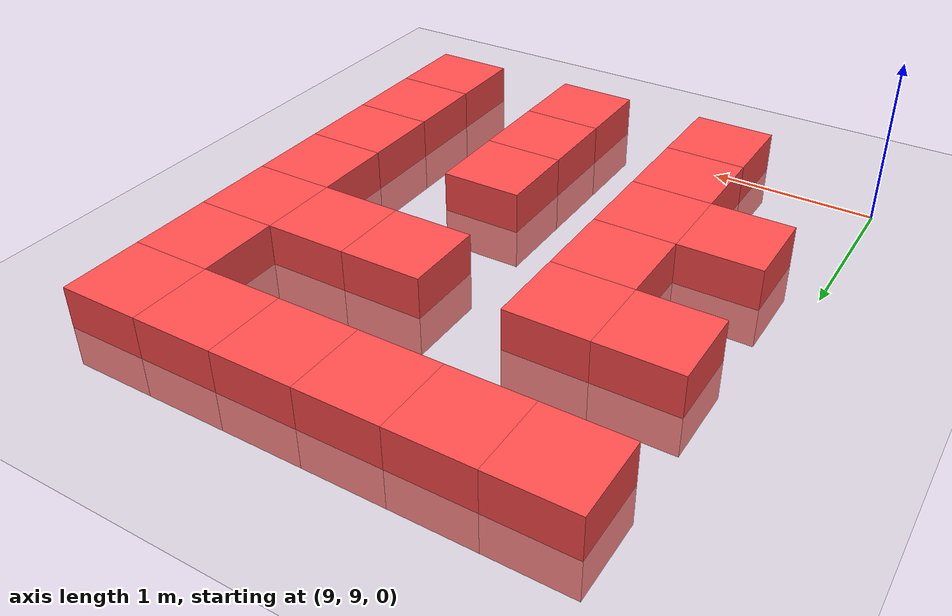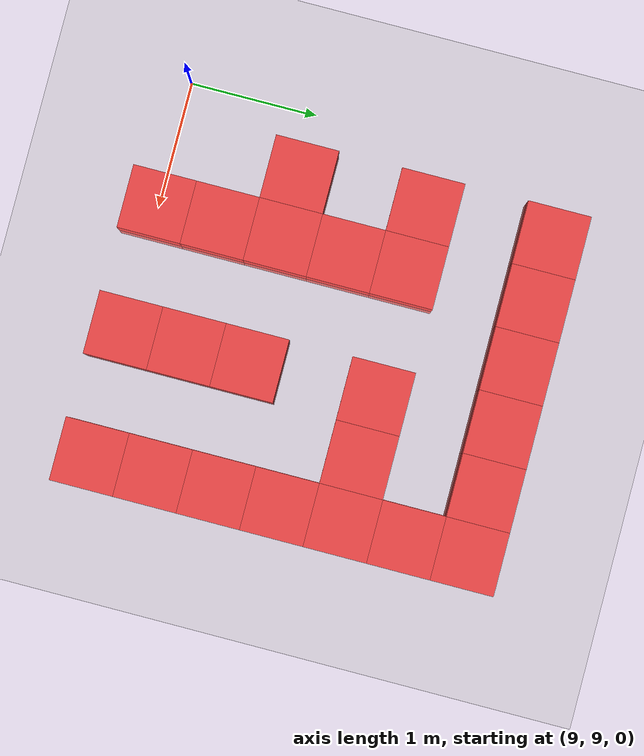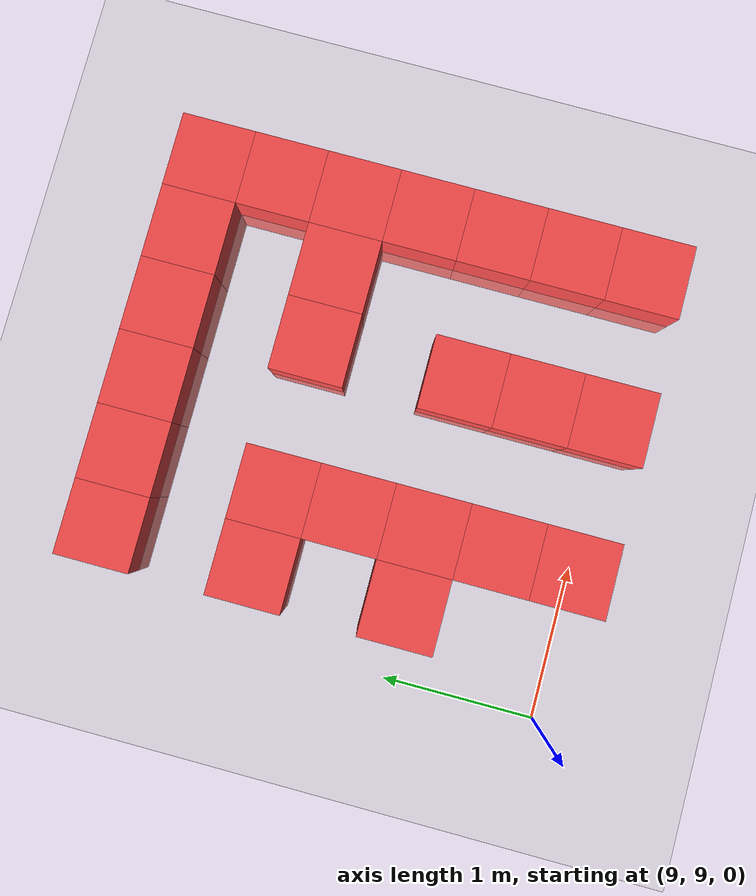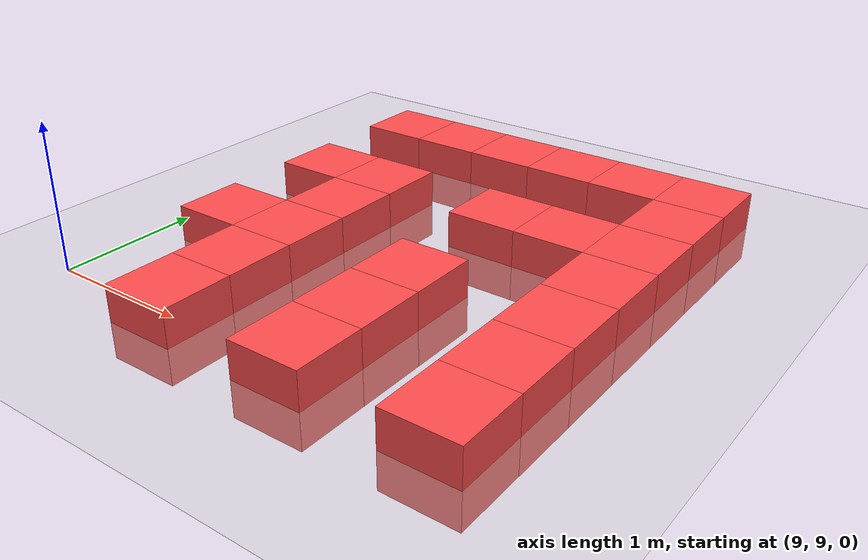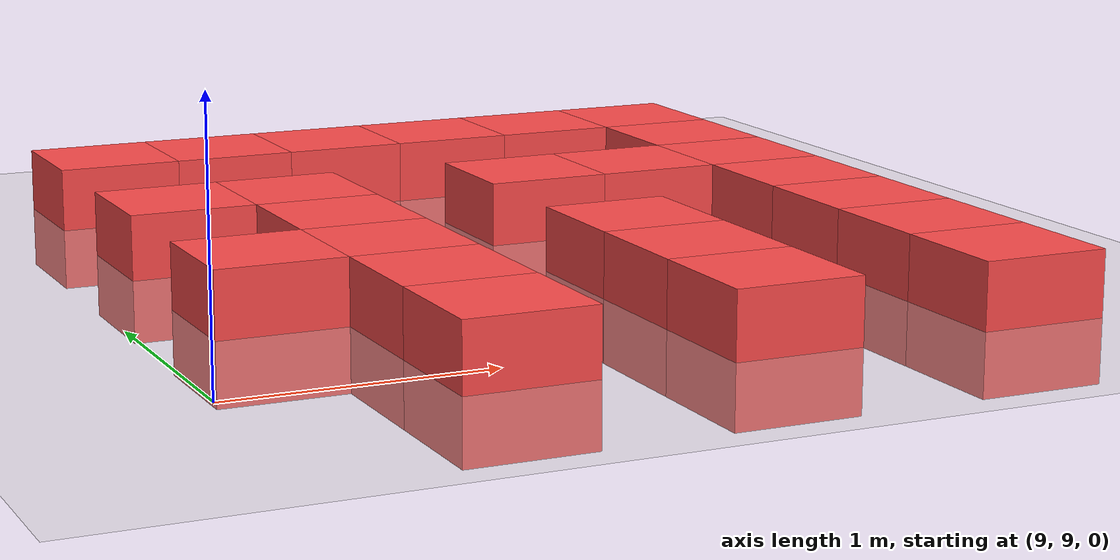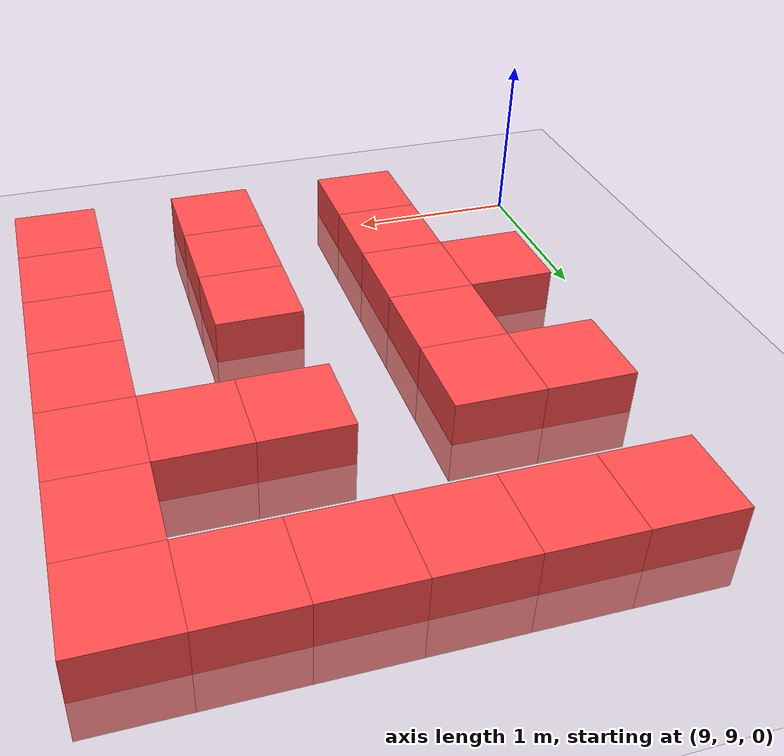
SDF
<sdf version="1.6">
 <world name="default">
  <model name="ground_plane">
   <static>1</static>
   <link name="link">
    <collision name="collision">
     <geometry><plane><normal>0 0 1</normal><size>100 100</size></plane></geometry>
     <surface><friction><ode><mu>100</mu><mu2>50</mu2></ode></friction></surface>
    </collision>
    <visual name="visual">
     <cast_shadows>0</cast_shadows>
     <geometry><plane><normal>0 0 1</normal><size>100 100</size></plane></geometry>
     <material>
      <script><uri>file://media/materials/scripts/gazebo.material</uri><name>Gazebo/Grey</name></script>
     </material>
    </visual>
   </link>
  </model>
  <model name="Box_Red_495">
   <link name="link_0">
    <inertial>
     <mass>1</mass>
     <inertia>
      <ixx>0.166667</ixx>
      <ixy>0</ixy>
      <ixz>0</ixz>
      <iyy>0.166667</iyy>
      <iyz>0</iyz>
      <izz>0.166667</izz>
     </inertia>
    </inertial>
    <visual name="visual">
     <geometry><box><size>0.5 0.5 0.5</size></box></geometry>
     <material>
      <lighting>1</lighting>
      <script><uri>file://media/materials/scripts/gazebo.material</uri><name>Gazebo/Grey</name></script>
      <ambient>1 0.3 0.3 1</ambient>
      <diffuse>0.7 0.7 0.7 1</diffuse>
      <specular>0.01 0.01 0.01 1</specular>
      <emissive>0 0 0 1</emissive>
      <shader type="vertex"><normal_map>__default__</normal_map></shader>
     </material>
    </visual>
    <collision name="collision">
     <geometry><box><size>0.5 0.5 0.5</size></box></geometry>
     <surface>
      <friction>
       <ode><mu>1</mu><mu2>1</mu2><fdir1>0 0 0</fdir1><slip1>0</slip1><slip2>0</slip2></ode>
       <torsional>
        <coefficient>1</coefficient>
        <patch_radius>0</patch_radius>
        <surface_radius>0</surface_radius>
        <use_patch_radius>1</use_patch_radius>
        <ode><slip>0</slip></ode>
       </torsional>
      </friction>
      <bounce><restitution_coefficient>0</restitution_coefficient><threshold>1e+06</threshold></bounce>
      <contact>
       <collide_without_contact>0</collide_without_contact>
       <collide_without_contact_bitmask>1</collide_without_contact_bitmask>
       <collide_bitmask>1</collide_bitmask>
       <ode>
        <soft_cfm>0</soft_cfm>
        <soft_erp>0.2</soft_erp>
        <kp>1e+13</kp>
        <kd>1</kd>
        <max_vel>0.01</max_vel>
        <min_depth>0</min_depth>
       </ode>
       <bullet>
        <split_impulse>1</split_impulse>
        <split_impulse_penetration_threshold>-0.01</split_impulse_penetration_threshold>
        <soft_cfm>0</soft_cfm>
        <soft_erp>0.2</soft_erp>
        <kp>1e+13</kp>
        <kd>1</kd>
       </bullet>
      </contact>
     </surface>
    </collision>
   </link>
   <static>0</static>
   <pose>9.500 10.000 0.000 0 0 0</pose>
  </model>
  <model name="Box_Red_497">
   <link name="link_0">
    <inertial>
     <mass>1</mass>
     <inertia>
      <ixx>0.166667</ixx>
      <ixy>0</ixy>
      <ixz>0</ixz>
      <iyy>0.166667</iyy>
      <iyz>0</iyz>
      <izz>0.166667</izz>
     </inertia>
    </inertial>
    <visual name="visual">
     <geometry><box><size>0.5 0.5 0.5</size></box></geometry>
     <material>
      <lighting>1</lighting>
      <script><uri>file://media/materials/scripts/gazebo.material</uri><name>Gazebo/Grey</name></script>
      <ambient>1 0.3 0.3 1</ambient>
      <diffuse>0.7 0.7 0.7 1</diffuse>
      <specular>0.01 0.01 0.01 1</specular>
      <emissive>0 0 0 1</emissive>
      <shader type="vertex"><normal_map>__default__</normal_map></shader>
     </material>
    </visual>
    <collision name="collision">
     <geometry><box><size>0.5 0.5 0.5</size></box></geometry>
     <surface>
      <friction>
       <ode><mu>1</mu><mu2>1</mu2><fdir1>0 0 0</fdir1><slip1>0</slip1><slip2>0</slip2></ode>
       <torsional>
        <coefficient>1</coefficient>
        <patch_radius>0</patch_radius>
        <surface_radius>0</surface_radius>
        <use_patch_radius>1</use_patch_radius>
        <ode><slip>0</slip></ode>
       </torsional>
      </friction>
      <bounce><restitution_coefficient>0</restitution_coefficient><threshold>1e+06</threshold></bounce>
      <contact>
       <collide_without_contact>0</collide_without_contact>
       <collide_without_contact_bitmask>1</collide_without_contact_bitmask>
       <collide_bitmask>1</collide_bitmask>
       <ode>
        <soft_cfm>0</soft_cfm>
        <soft_erp>0.2</soft_erp>
        <kp>1e+13</kp>
        <kd>1</kd>
        <max_vel>0.01</max_vel>
        <min_depth>0</min_depth>
       </ode>
       <bullet>
        <split_impulse>1</split_impulse>
        <split_impulse_penetration_threshold>-0.01</split_impulse_penetration_threshold>
        <soft_cfm>0</soft_cfm>
        <soft_erp>0.2</soft_erp>
        <kp>1e+13</kp>
        <kd>1</kd>
       </bullet>
      </contact>
     </surface>
    </collision>
   </link>
   <static>0</static>
   <pose>9.500 11.000 0.000 0 0 0</pose>
  </model>
  <model name="Box_Red_499">
   <link name="link_0">
    <inertial>
     <mass>1</mass>
     <inertia>
      <ixx>0.166667</ixx>
      <ixy>0</ixy>
      <ixz>0</ixz>
      <iyy>0.166667</iyy>
      <iyz>0</iyz>
      <izz>0.166667</izz>
     </inertia>
    </inertial>
    <visual name="visual">
     <geometry><box><size>0.5 0.5 0.5</size></box></geometry>
     <material>
      <lighting>1</lighting>
      <script><uri>file://media/materials/scripts/gazebo.material</uri><name>Gazebo/Grey</name></script>
      <ambient>1 0.3 0.3 1</ambient>
      <diffuse>0.7 0.7 0.7 1</diffuse>
      <specular>0.01 0.01 0.01 1</specular>
      <emissive>0 0 0 1</emissive>
      <shader type="vertex"><normal_map>__default__</normal_map></shader>
     </material>
    </visual>
    <collision name="collision">
     <geometry><box><size>0.5 0.5 0.5</size></box></geometry>
     <surface>
      <friction>
       <ode><mu>1</mu><mu2>1</mu2><fdir1>0 0 0</fdir1><slip1>0</slip1><slip2>0</slip2></ode>
       <torsional>
        <coefficient>1</coefficient>
        <patch_radius>0</patch_radius>
        <surface_radius>0</surface_radius>
        <use_patch_radius>1</use_patch_radius>
        <ode><slip>0</slip></ode>
       </torsional>
      </friction>
      <bounce><restitution_coefficient>0</restitution_coefficient><threshold>1e+06</threshold></bounce>
      <contact>
       <collide_without_contact>0</collide_without_contact>
       <collide_without_contact_bitmask>1</collide_without_contact_bitmask>
       <collide_bitmask>1</collide_bitmask>
       <ode>
        <soft_cfm>0</soft_cfm>
        <soft_erp>0.2</soft_erp>
        <kp>1e+13</kp>
        <kd>1</kd>
        <max_vel>0.01</max_vel>
        <min_depth>0</min_depth>
       </ode>
       <bullet>
        <split_impulse>1</split_impulse>
        <split_impulse_penetration_threshold>-0.01</split_impulse_penetration_threshold>
        <soft_cfm>0</soft_cfm>
        <soft_erp>0.2</soft_erp>
        <kp>1e+13</kp>
        <kd>1</kd>
       </bullet>
      </contact>
     </surface>
    </collision>
   </link>
   <static>0</static>
   <pose>9.500 12.000 0.000 0 0 0</pose>
  </model>
  <model name="Box_Red_518">
   <link name="link_0">
    <inertial>
     <mass>1</mass>
     <inertia>
      <ixx>0.166667</ixx>
      <ixy>0</ixy>
      <ixz>0</ixz>
      <iyy>0.166667</iyy>
      <iyz>0</iyz>
      <izz>0.166667</izz>
     </inertia>
    </inertial>
    <visual name="visual">
     <geometry><box><size>0.5 0.5 0.5</size></box></geometry>
     <material>
      <lighting>1</lighting>
      <script><uri>file://media/materials/scripts/gazebo.material</uri><name>Gazebo/Grey</name></script>
      <ambient>1 0.3 0.3 1</ambient>
      <diffuse>0.7 0.7 0.7 1</diffuse>
      <specular>0.01 0.01 0.01 1</specular>
      <emissive>0 0 0 1</emissive>
      <shader type="vertex"><normal_map>__default__</normal_map></shader>
     </material>
    </visual>
    <collision name="collision">
     <geometry><box><size>0.5 0.5 0.5</size></box></geometry>
     <surface>
      <friction>
       <ode><mu>1</mu><mu2>1</mu2><fdir1>0 0 0</fdir1><slip1>0</slip1><slip2>0</slip2></ode>
       <torsional>
        <coefficient>1</coefficient>
        <patch_radius>0</patch_radius>
        <surface_radius>0</surface_radius>
        <use_patch_radius>1</use_patch_radius>
        <ode><slip>0</slip></ode>
       </torsional>
      </friction>
      <bounce><restitution_coefficient>0</restitution_coefficient><threshold>1e+06</threshold></bounce>
      <contact>
       <collide_without_contact>0</collide_without_contact>
       <collide_without_contact_bitmask>1</collide_without_contact_bitmask>
       <collide_bitmask>1</collide_bitmask>
       <ode>
        <soft_cfm>0</soft_cfm>
        <soft_erp>0.2</soft_erp>
        <kp>1e+13</kp>
        <kd>1</kd>
        <max_vel>0.01</max_vel>
        <min_depth>0</min_depth>
       </ode>
       <bullet>
        <split_impulse>1</split_impulse>
        <split_impulse_penetration_threshold>-0.01</split_impulse_penetration_threshold>
        <soft_cfm>0</soft_cfm>
        <soft_erp>0.2</soft_erp>
        <kp>1e+13</kp>
        <kd>1</kd>
       </bullet>
      </contact>
     </surface>
    </collision>
   </link>
   <static>0</static>
   <pose>10.000 9.000 0.000 0 0 0</pose>
  </model>
  <model name="Box_Red_519">
   <link name="link_0">
    <inertial>
     <mass>1</mass>
     <inertia>
      <ixx>0.166667</ixx>
      <ixy>0</ixy>
      <ixz>0</ixz>
      <iyy>0.166667</iyy>
      <iyz>0</iyz>
      <izz>0.166667</izz>
     </inertia>
    </inertial>
    <visual name="visual">
     <geometry><box><size>0.5 0.5 0.5</size></box></geometry>
     <material>
      <lighting>1</lighting>
      <script><uri>file://media/materials/scripts/gazebo.material</uri><name>Gazebo/Grey</name></script>
      <ambient>1 0.3 0.3 1</ambient>
      <diffuse>0.7 0.7 0.7 1</diffuse>
      <specular>0.01 0.01 0.01 1</specular>
      <emissive>0 0 0 1</emissive>
      <shader type="vertex"><normal_map>__default__</normal_map></shader>
     </material>
    </visual>
    <collision name="collision">
     <geometry><box><size>0.5 0.5 0.5</size></box></geometry>
     <surface>
      <friction>
       <ode><mu>1</mu><mu2>1</mu2><fdir1>0 0 0</fdir1><slip1>0</slip1><slip2>0</slip2></ode>
       <torsional>
        <coefficient>1</coefficient>
        <patch_radius>0</patch_radius>
        <surface_radius>0</surface_radius>
        <use_patch_radius>1</use_patch_radius>
        <ode><slip>0</slip></ode>
       </torsional>
      </friction>
      <bounce><restitution_coefficient>0</restitution_coefficient><threshold>1e+06</threshold></bounce>
      <contact>
       <collide_without_contact>0</collide_without_contact>
       <collide_without_contact_bitmask>1</collide_without_contact_bitmask>
       <collide_bitmask>1</collide_bitmask>
       <ode>
        <soft_cfm>0</soft_cfm>
        <soft_erp>0.2</soft_erp>
        <kp>1e+13</kp>
        <kd>1</kd>
        <max_vel>0.01</max_vel>
        <min_depth>0</min_depth>
       </ode>
       <bullet>
        <split_impulse>1</split_impulse>
        <split_impulse_penetration_threshold>-0.01</split_impulse_penetration_threshold>
        <soft_cfm>0</soft_cfm>
        <soft_erp>0.2</soft_erp>
        <kp>1e+13</kp>
        <kd>1</kd>
       </bullet>
      </contact>
     </surface>
    </collision>
   </link>
   <static>0</static>
   <pose>10.000 9.500 0.000 0 0 0</pose>
  </model>
  <model name="Box_Red_520">
   <link name="link_0">
    <inertial>
     <mass>1</mass>
     <inertia>
      <ixx>0.166667</ixx>
      <ixy>0</ixy>
      <ixz>0</ixz>
      <iyy>0.166667</iyy>
      <iyz>0</iyz>
      <izz>0.166667</izz>
     </inertia>
    </inertial>
    <visual name="visual">
     <geometry><box><size>0.5 0.5 0.5</size></box></geometry>
     <material>
      <lighting>1</lighting>
      <script><uri>file://media/materials/scripts/gazebo.material</uri><name>Gazebo/Grey</name></script>
      <ambient>1 0.3 0.3 1</ambient>
      <diffuse>0.7 0.7 0.7 1</diffuse>
      <specular>0.01 0.01 0.01 1</specular>
      <emissive>0 0 0 1</emissive>
      <shader type="vertex"><normal_map>__default__</normal_map></shader>
     </material>
    </visual>
    <collision name="collision">
     <geometry><box><size>0.5 0.5 0.5</size></box></geometry>
     <surface>
      <friction>
       <ode><mu>1</mu><mu2>1</mu2><fdir1>0 0 0</fdir1><slip1>0</slip1><slip2>0</slip2></ode>
       <torsional>
        <coefficient>1</coefficient>
        <patch_radius>0</patch_radius>
        <surface_radius>0</surface_radius>
        <use_patch_radius>1</use_patch_radius>
        <ode><slip>0</slip></ode>
       </torsional>
      </friction>
      <bounce><restitution_coefficient>0</restitution_coefficient><threshold>1e+06</threshold></bounce>
      <contact>
       <collide_without_contact>0</collide_without_contact>
       <collide_without_contact_bitmask>1</collide_without_contact_bitmask>
       <collide_bitmask>1</collide_bitmask>
       <ode>
        <soft_cfm>0</soft_cfm>
        <soft_erp>0.2</soft_erp>
        <kp>1e+13</kp>
        <kd>1</kd>
        <max_vel>0.01</max_vel>
        <min_depth>0</min_depth>
       </ode>
       <bullet>
        <split_impulse>1</split_impulse>
        <split_impulse_penetration_threshold>-0.01</split_impulse_penetration_threshold>
        <soft_cfm>0</soft_cfm>
        <soft_erp>0.2</soft_erp>
        <kp>1e+13</kp>
        <kd>1</kd>
       </bullet>
      </contact>
     </surface>
    </collision>
   </link>
   <static>0</static>
   <pose>10.000 10.000 0.000 0 0 0</pose>
  </model>
  <model name="Box_Red_521">
   <link name="link_0">
    <inertial>
     <mass>1</mass>
     <inertia>
      <ixx>0.166667</ixx>
      <ixy>0</ixy>
      <ixz>0</ixz>
      <iyy>0.166667</iyy>
      <iyz>0</iyz>
      <izz>0.166667</izz>
     </inertia>
    </inertial>
    <visual name="visual">
     <geometry><box><size>0.5 0.5 0.5</size></box></geometry>
     <material>
      <lighting>1</lighting>
      <script><uri>file://media/materials/scripts/gazebo.material</uri><name>Gazebo/Grey</name></script>
      <ambient>1 0.3 0.3 1</ambient>
      <diffuse>0.7 0.7 0.7 1</diffuse>
      <specular>0.01 0.01 0.01 1</specular>
      <emissive>0 0 0 1</emissive>
      <shader type="vertex"><normal_map>__default__</normal_map></shader>
     </material>
    </visual>
    <collision name="collision">
     <geometry><box><size>0.5 0.5 0.5</size></box></geometry>
     <surface>
      <friction>
       <ode><mu>1</mu><mu2>1</mu2><fdir1>0 0 0</fdir1><slip1>0</slip1><slip2>0</slip2></ode>
       <torsional>
        <coefficient>1</coefficient>
        <patch_radius>0</patch_radius>
        <surface_radius>0</surface_radius>
        <use_patch_radius>1</use_patch_radius>
        <ode><slip>0</slip></ode>
       </torsional>
      </friction>
      <bounce><restitution_coefficient>0</restitution_coefficient><threshold>1e+06</threshold></bounce>
      <contact>
       <collide_without_contact>0</collide_without_contact>
       <collide_without_contact_bitmask>1</collide_without_contact_bitmask>
       <collide_bitmask>1</collide_bitmask>
       <ode>
        <soft_cfm>0</soft_cfm>
        <soft_erp>0.2</soft_erp>
        <kp>1e+13</kp>
        <kd>1</kd>
        <max_vel>0.01</max_vel>
        <min_depth>0</min_depth>
       </ode>
       <bullet>
        <split_impulse>1</split_impulse>
        <split_impulse_penetration_threshold>-0.01</split_impulse_penetration_threshold>
        <soft_cfm>0</soft_cfm>
        <soft_erp>0.2</soft_erp>
        <kp>1e+13</kp>
        <kd>1</kd>
       </bullet>
      </contact>
     </surface>
    </collision>
   </link>
   <static>0</static>
   <pose>10.000 10.500 0.000 0 0 0</pose>
  </model>
  <model name="Box_Red_522">
   <link name="link_0">
    <inertial>
     <mass>1</mass>
     <inertia>
      <ixx>0.166667</ixx>
      <ixy>0</ixy>
      <ixz>0</ixz>
      <iyy>0.166667</iyy>
      <iyz>0</iyz>
      <izz>0.166667</izz>
     </inertia>
    </inertial>
    <visual name="visual">
     <geometry><box><size>0.5 0.5 0.5</size></box></geometry>
     <material>
      <lighting>1</lighting>
      <script><uri>file://media/materials/scripts/gazebo.material</uri><name>Gazebo/Grey</name></script>
      <ambient>1 0.3 0.3 1</ambient>
      <diffuse>0.7 0.7 0.7 1</diffuse>
      <specular>0.01 0.01 0.01 1</specular>
      <emissive>0 0 0 1</emissive>
      <shader type="vertex"><normal_map>__default__</normal_map></shader>
     </material>
    </visual>
    <collision name="collision">
     <geometry><box><size>0.5 0.5 0.5</size></box></geometry>
     <surface>
      <friction>
       <ode><mu>1</mu><mu2>1</mu2><fdir1>0 0 0</fdir1><slip1>0</slip1><slip2>0</slip2></ode>
       <torsional>
        <coefficient>1</coefficient>
        <patch_radius>0</patch_radius>
        <surface_radius>0</surface_radius>
        <use_patch_radius>1</use_patch_radius>
        <ode><slip>0</slip></ode>
       </torsional>
      </friction>
      <bounce><restitution_coefficient>0</restitution_coefficient><threshold>1e+06</threshold></bounce>
      <contact>
       <collide_without_contact>0</collide_without_contact>
       <collide_without_contact_bitmask>1</collide_without_contact_bitmask>
       <collide_bitmask>1</collide_bitmask>
       <ode>
        <soft_cfm>0</soft_cfm>
        <soft_erp>0.2</soft_erp>
        <kp>1e+13</kp>
        <kd>1</kd>
        <max_vel>0.01</max_vel>
        <min_depth>0</min_depth>
       </ode>
       <bullet>
        <split_impulse>1</split_impulse>
        <split_impulse_penetration_threshold>-0.01</split_impulse_penetration_threshold>
        <soft_cfm>0</soft_cfm>
        <soft_erp>0.2</soft_erp>
        <kp>1e+13</kp>
        <kd>1</kd>
       </bullet>
      </contact>
     </surface>
    </collision>
   </link>
   <static>0</static>
   <pose>10.000 11.000 0.000 0 0 0</pose>
  </model>
  <model name="Box_Red_524">
   <link name="link_0">
    <inertial>
     <mass>1</mass>
     <inertia>
      <ixx>0.166667</ixx>
      <ixy>0</ixy>
      <ixz>0</ixz>
      <iyy>0.166667</iyy>
      <iyz>0</iyz>
      <izz>0.166667</izz>
     </inertia>
    </inertial>
    <visual name="visual">
     <geometry><box><size>0.5 0.5 0.5</size></box></geometry>
     <material>
      <lighting>1</lighting>
      <script><uri>file://media/materials/scripts/gazebo.material</uri><name>Gazebo/Grey</name></script>
      <ambient>1 0.3 0.3 1</ambient>
      <diffuse>0.7 0.7 0.7 1</diffuse>
      <specular>0.01 0.01 0.01 1</specular>
      <emissive>0 0 0 1</emissive>
      <shader type="vertex"><normal_map>__default__</normal_map></shader>
     </material>
    </visual>
    <collision name="collision">
     <geometry><box><size>0.5 0.5 0.5</size></box></geometry>
     <surface>
      <friction>
       <ode><mu>1</mu><mu2>1</mu2><fdir1>0 0 0</fdir1><slip1>0</slip1><slip2>0</slip2></ode>
       <torsional>
        <coefficient>1</coefficient>
        <patch_radius>0</patch_radius>
        <surface_radius>0</surface_radius>
        <use_patch_radius>1</use_patch_radius>
        <ode><slip>0</slip></ode>
       </torsional>
      </friction>
      <bounce><restitution_coefficient>0</restitution_coefficient><threshold>1e+06</threshold></bounce>
      <contact>
       <collide_without_contact>0</collide_without_contact>
       <collide_without_contact_bitmask>1</collide_without_contact_bitmask>
       <collide_bitmask>1</collide_bitmask>
       <ode>
        <soft_cfm>0</soft_cfm>
        <soft_erp>0.2</soft_erp>
        <kp>1e+13</kp>
        <kd>1</kd>
        <max_vel>0.01</max_vel>
        <min_depth>0</min_depth>
       </ode>
       <bullet>
        <split_impulse>1</split_impulse>
        <split_impulse_penetration_threshold>-0.01</split_impulse_penetration_threshold>
        <soft_cfm>0</soft_cfm>
        <soft_erp>0.2</soft_erp>
        <kp>1e+13</kp>
        <kd>1</kd>
       </bullet>
      </contact>
     </surface>
    </collision>
   </link>
   <static>0</static>
   <pose>10.000 12.000 0.000 0 0 0</pose>
  </model>
  <model name="Box_Red_549">
   <link name="link_0">
    <inertial>
     <mass>1</mass>
     <inertia>
      <ixx>0.166667</ixx>
      <ixy>0</ixy>
      <ixz>0</ixz>
      <iyy>0.166667</iyy>
      <iyz>0</iyz>
      <izz>0.166667</izz>
     </inertia>
    </inertial>
    <visual name="visual">
     <geometry><box><size>0.5 0.5 0.5</size></box></geometry>
     <material>
      <lighting>1</lighting>
      <script><uri>file://media/materials/scripts/gazebo.material</uri><name>Gazebo/Grey</name></script>
      <ambient>1 0.3 0.3 1</ambient>
      <diffuse>0.7 0.7 0.7 1</diffuse>
      <specular>0.01 0.01 0.01 1</specular>
      <emissive>0 0 0 1</emissive>
      <shader type="vertex"><normal_map>__default__</normal_map></shader>
     </material>
    </visual>
    <collision name="collision">
     <geometry><box><size>0.5 0.5 0.5</size></box></geometry>
     <surface>
      <friction>
       <ode><mu>1</mu><mu2>1</mu2><fdir1>0 0 0</fdir1><slip1>0</slip1><slip2>0</slip2></ode>
       <torsional>
        <coefficient>1</coefficient>
        <patch_radius>0</patch_radius>
        <surface_radius>0</surface_radius>
        <use_patch_radius>1</use_patch_radius>
        <ode><slip>0</slip></ode>
       </torsional>
      </friction>
      <bounce><restitution_coefficient>0</restitution_coefficient><threshold>1e+06</threshold></bounce>
      <contact>
       <collide_without_contact>0</collide_without_contact>
       <collide_without_contact_bitmask>1</collide_without_contact_bitmask>
       <collide_bitmask>1</collide_bitmask>
       <ode>
        <soft_cfm>0</soft_cfm>
        <soft_erp>0.2</soft_erp>
        <kp>1e+13</kp>
        <kd>1</kd>
        <max_vel>0.01</max_vel>
        <min_depth>0</min_depth>
       </ode>
       <bullet>
        <split_impulse>1</split_impulse>
        <split_impulse_penetration_threshold>-0.01</split_impulse_penetration_threshold>
        <soft_cfm>0</soft_cfm>
        <soft_erp>0.2</soft_erp>
        <kp>1e+13</kp>
        <kd>1</kd>
       </bullet>
      </contact>
     </surface>
    </collision>
   </link>
   <static>0</static>
   <pose>10.500 12.000 0.000 0 0 0</pose>
  </model>
  <model name="Box_Red_568">
   <link name="link_0">
    <inertial>
     <mass>1</mass>
     <inertia>
      <ixx>0.166667</ixx>
      <ixy>0</ixy>
      <ixz>0</ixz>
      <iyy>0.166667</iyy>
      <iyz>0</iyz>
      <izz>0.166667</izz>
     </inertia>
    </inertial>
    <visual name="visual">
     <geometry><box><size>0.5 0.5 0.5</size></box></geometry>
     <material>
      <lighting>1</lighting>
      <script><uri>file://media/materials/scripts/gazebo.material</uri><name>Gazebo/Grey</name></script>
      <ambient>1 0.3 0.3 1</ambient>
      <diffuse>0.7 0.7 0.7 1</diffuse>
      <specular>0.01 0.01 0.01 1</specular>
      <emissive>0 0 0 1</emissive>
      <shader type="vertex"><normal_map>__default__</normal_map></shader>
     </material>
    </visual>
    <collision name="collision">
     <geometry><box><size>0.5 0.5 0.5</size></box></geometry>
     <surface>
      <friction>
       <ode><mu>1</mu><mu2>1</mu2><fdir1>0 0 0</fdir1><slip1>0</slip1><slip2>0</slip2></ode>
       <torsional>
        <coefficient>1</coefficient>
        <patch_radius>0</patch_radius>
        <surface_radius>0</surface_radius>
        <use_patch_radius>1</use_patch_radius>
        <ode><slip>0</slip></ode>
       </torsional>
      </friction>
      <bounce><restitution_coefficient>0</restitution_coefficient><threshold>1e+06</threshold></bounce>
      <contact>
       <collide_without_contact>0</collide_without_contact>
       <collide_without_contact_bitmask>1</collide_without_contact_bitmask>
       <collide_bitmask>1</collide_bitmask>
       <ode>
        <soft_cfm>0</soft_cfm>
        <soft_erp>0.2</soft_erp>
        <kp>1e+13</kp>
        <kd>1</kd>
        <max_vel>0.01</max_vel>
        <min_depth>0</min_depth>
       </ode>
       <bullet>
        <split_impulse>1</split_impulse>
        <split_impulse_penetration_threshold>-0.01</split_impulse_penetration_threshold>
        <soft_cfm>0</soft_cfm>
        <soft_erp>0.2</soft_erp>
        <kp>1e+13</kp>
        <kd>1</kd>
       </bullet>
      </contact>
     </surface>
    </collision>
   </link>
   <static>0</static>
   <pose>11.000 9.000 0.000 0 0 0</pose>
  </model>
  <model name="Box_Red_569">
   <link name="link_0">
    <inertial>
     <mass>1</mass>
     <inertia>
      <ixx>0.166667</ixx>
      <ixy>0</ixy>
      <ixz>0</ixz>
      <iyy>0.166667</iyy>
      <iyz>0</iyz>
      <izz>0.166667</izz>
     </inertia>
    </inertial>
    <visual name="visual">
     <geometry><box><size>0.5 0.5 0.5</size></box></geometry>
     <material>
      <lighting>1</lighting>
      <script><uri>file://media/materials/scripts/gazebo.material</uri><name>Gazebo/Grey</name></script>
      <ambient>1 0.3 0.3 1</ambient>
      <diffuse>0.7 0.7 0.7 1</diffuse>
      <specular>0.01 0.01 0.01 1</specular>
      <emissive>0 0 0 1</emissive>
      <shader type="vertex"><normal_map>__default__</normal_map></shader>
     </material>
    </visual>
    <collision name="collision">
     <geometry><box><size>0.5 0.5 0.5</size></box></geometry>
     <surface>
      <friction>
       <ode><mu>1</mu><mu2>1</mu2><fdir1>0 0 0</fdir1><slip1>0</slip1><slip2>0</slip2></ode>
       <torsional>
        <coefficient>1</coefficient>
        <patch_radius>0</patch_radius>
        <surface_radius>0</surface_radius>
        <use_patch_radius>1</use_patch_radius>
        <ode><slip>0</slip></ode>
       </torsional>
      </friction>
      <bounce><restitution_coefficient>0</restitution_coefficient><threshold>1e+06</threshold></bounce>
      <contact>
       <collide_without_contact>0</collide_without_contact>
       <collide_without_contact_bitmask>1</collide_without_contact_bitmask>
       <collide_bitmask>1</collide_bitmask>
       <ode>
        <soft_cfm>0</soft_cfm>
        <soft_erp>0.2</soft_erp>
        <kp>1e+13</kp>
        <kd>1</kd>
        <max_vel>0.01</max_vel>
        <min_depth>0</min_depth>
       </ode>
       <bullet>
        <split_impulse>1</split_impulse>
        <split_impulse_penetration_threshold>-0.01</split_impulse_penetration_threshold>
        <soft_cfm>0</soft_cfm>
        <soft_erp>0.2</soft_erp>
        <kp>1e+13</kp>
        <kd>1</kd>
       </bullet>
      </contact>
     </surface>
    </collision>
   </link>
   <static>0</static>
   <pose>11.000 9.500 0.000 0 0 0</pose>
  </model>
  <model name="Box_Red_570">
   <link name="link_0">
    <inertial>
     <mass>1</mass>
     <inertia>
      <ixx>0.166667</ixx>
      <ixy>0</ixy>
      <ixz>0</ixz>
      <iyy>0.166667</iyy>
      <iyz>0</iyz>
      <izz>0.166667</izz>
     </inertia>
    </inertial>
    <visual name="visual">
     <geometry><box><size>0.5 0.5 0.5</size></box></geometry>
     <material>
      <lighting>1</lighting>
      <script><uri>file://media/materials/scripts/gazebo.material</uri><name>Gazebo/Grey</name></script>
      <ambient>1 0.3 0.3 1</ambient>
      <diffuse>0.7 0.7 0.7 1</diffuse>
      <specular>0.01 0.01 0.01 1</specular>
      <emissive>0 0 0 1</emissive>
      <shader type="vertex"><normal_map>__default__</normal_map></shader>
     </material>
    </visual>
    <collision name="collision">
     <geometry><box><size>0.5 0.5 0.5</size></box></geometry>
     <surface>
      <friction>
       <ode><mu>1</mu><mu2>1</mu2><fdir1>0 0 0</fdir1><slip1>0</slip1><slip2>0</slip2></ode>
       <torsional>
        <coefficient>1</coefficient>
        <patch_radius>0</patch_radius>
        <surface_radius>0</surface_radius>
        <use_patch_radius>1</use_patch_radius>
        <ode><slip>0</slip></ode>
       </torsional>
      </friction>
      <bounce><restitution_coefficient>0</restitution_coefficient><threshold>1e+06</threshold></bounce>
      <contact>
       <collide_without_contact>0</collide_without_contact>
       <collide_without_contact_bitmask>1</collide_without_contact_bitmask>
       <collide_bitmask>1</collide_bitmask>
       <ode>
        <soft_cfm>0</soft_cfm>
        <soft_erp>0.2</soft_erp>
        <kp>1e+13</kp>
        <kd>1</kd>
        <max_vel>0.01</max_vel>
        <min_depth>0</min_depth>
       </ode>
       <bullet>
        <split_impulse>1</split_impulse>
        <split_impulse_penetration_threshold>-0.01</split_impulse_penetration_threshold>
        <soft_cfm>0</soft_cfm>
        <soft_erp>0.2</soft_erp>
        <kp>1e+13</kp>
        <kd>1</kd>
       </bullet>
      </contact>
     </surface>
    </collision>
   </link>
   <static>0</static>
   <pose>11.000 10.000 0.000 0 0 0</pose>
  </model>
  <model name="Box_Red_572">
   <link name="link_0">
    <inertial>
     <mass>1</mass>
     <inertia>
      <ixx>0.166667</ixx>
      <ixy>0</ixy>
      <ixz>0</ixz>
      <iyy>0.166667</iyy>
      <iyz>0</iyz>
      <izz>0.166667</izz>
     </inertia>
    </inertial>
    <visual name="visual">
     <geometry><box><size>0.5 0.5 0.5</size></box></geometry>
     <material>
      <lighting>1</lighting>
      <script><uri>file://media/materials/scripts/gazebo.material</uri><name>Gazebo/Grey</name></script>
      <ambient>1 0.3 0.3 1</ambient>
      <diffuse>0.7 0.7 0.7 1</diffuse>
      <specular>0.01 0.01 0.01 1</specular>
      <emissive>0 0 0 1</emissive>
      <shader type="vertex"><normal_map>__default__</normal_map></shader>
     </material>
    </visual>
    <collision name="collision">
     <geometry><box><size>0.5 0.5 0.5</size></box></geometry>
     <surface>
      <friction>
       <ode><mu>1</mu><mu2>1</mu2><fdir1>0 0 0</fdir1><slip1>0</slip1><slip2>0</slip2></ode>
       <torsional>
        <coefficient>1</coefficient>
        <patch_radius>0</patch_radius>
        <surface_radius>0</surface_radius>
        <use_patch_radius>1</use_patch_radius>
        <ode><slip>0</slip></ode>
       </torsional>
      </friction>
      <bounce><restitution_coefficient>0</restitution_coefficient><threshold>1e+06</threshold></bounce>
      <contact>
       <collide_without_contact>0</collide_without_contact>
       <collide_without_contact_bitmask>1</collide_without_contact_bitmask>
       <collide_bitmask>1</collide_bitmask>
       <ode>
        <soft_cfm>0</soft_cfm>
        <soft_erp>0.2</soft_erp>
        <kp>1e+13</kp>
        <kd>1</kd>
        <max_vel>0.01</max_vel>
        <min_depth>0</min_depth>
       </ode>
       <bullet>
        <split_impulse>1</split_impulse>
        <split_impulse_penetration_threshold>-0.01</split_impulse_penetration_threshold>
        <soft_cfm>0</soft_cfm>
        <soft_erp>0.2</soft_erp>
        <kp>1e+13</kp>
        <kd>1</kd>
       </bullet>
      </contact>
     </surface>
    </collision>
   </link>
   <static>0</static>
   <pose>11.000 11.000 0.000 0 0 0</pose>
  </model>
  <model name="Box_Red_574">
   <link name="link_0">
    <inertial>
     <mass>1</mass>
     <inertia>
      <ixx>0.166667</ixx>
      <ixy>0</ixy>
      <ixz>0</ixz>
      <iyy>0.166667</iyy>
      <iyz>0</iyz>
      <izz>0.166667</izz>
     </inertia>
    </inertial>
    <visual name="visual">
     <geometry><box><size>0.5 0.5 0.5</size></box></geometry>
     <material>
      <lighting>1</lighting>
      <script><uri>file://media/materials/scripts/gazebo.material</uri><name>Gazebo/Grey</name></script>
      <ambient>1 0.3 0.3 1</ambient>
      <diffuse>0.7 0.7 0.7 1</diffuse>
      <specular>0.01 0.01 0.01 1</specular>
      <emissive>0 0 0 1</emissive>
      <shader type="vertex"><normal_map>__default__</normal_map></shader>
     </material>
    </visual>
    <collision name="collision">
     <geometry><box><size>0.5 0.5 0.5</size></box></geometry>
     <surface>
      <friction>
       <ode><mu>1</mu><mu2>1</mu2><fdir1>0 0 0</fdir1><slip1>0</slip1><slip2>0</slip2></ode>
       <torsional>
        <coefficient>1</coefficient>
        <patch_radius>0</patch_radius>
        <surface_radius>0</surface_radius>
        <use_patch_radius>1</use_patch_radius>
        <ode><slip>0</slip></ode>
       </torsional>
      </friction>
      <bounce><restitution_coefficient>0</restitution_coefficient><threshold>1e+06</threshold></bounce>
      <contact>
       <collide_without_contact>0</collide_without_contact>
       <collide_without_contact_bitmask>1</collide_without_contact_bitmask>
       <collide_bitmask>1</collide_bitmask>
       <ode>
        <soft_cfm>0</soft_cfm>
        <soft_erp>0.2</soft_erp>
        <kp>1e+13</kp>
        <kd>1</kd>
        <max_vel>0.01</max_vel>
        <min_depth>0</min_depth>
       </ode>
       <bullet>
        <split_impulse>1</split_impulse>
        <split_impulse_penetration_threshold>-0.01</split_impulse_penetration_threshold>
        <soft_cfm>0</soft_cfm>
        <soft_erp>0.2</soft_erp>
        <kp>1e+13</kp>
        <kd>1</kd>
       </bullet>
      </contact>
     </surface>
    </collision>
   </link>
   <static>0</static>
   <pose>11.000 12.000 0.000 0 0 0</pose>
  </model>
  <model name="Box_Red_597">
   <link name="link_0">
    <inertial>
     <mass>1</mass>
     <inertia>
      <ixx>0.166667</ixx>
      <ixy>0</ixy>
      <ixz>0</ixz>
      <iyy>0.166667</iyy>
      <iyz>0</iyz>
      <izz>0.166667</izz>
     </inertia>
    </inertial>
    <visual name="visual">
     <geometry><box><size>0.5 0.5 0.5</size></box></geometry>
     <material>
      <lighting>1</lighting>
      <script><uri>file://media/materials/scripts/gazebo.material</uri><name>Gazebo/Grey</name></script>
      <ambient>1 0.3 0.3 1</ambient>
      <diffuse>0.7 0.7 0.7 1</diffuse>
      <specular>0.01 0.01 0.01 1</specular>
      <emissive>0 0 0 1</emissive>
      <shader type="vertex"><normal_map>__default__</normal_map></shader>
     </material>
    </visual>
    <collision name="collision">
     <geometry><box><size>0.5 0.5 0.5</size></box></geometry>
     <surface>
      <friction>
       <ode><mu>1</mu><mu2>1</mu2><fdir1>0 0 0</fdir1><slip1>0</slip1><slip2>0</slip2></ode>
       <torsional>
        <coefficient>1</coefficient>
        <patch_radius>0</patch_radius>
        <surface_radius>0</surface_radius>
        <use_patch_radius>1</use_patch_radius>
        <ode><slip>0</slip></ode>
       </torsional>
      </friction>
      <bounce><restitution_coefficient>0</restitution_coefficient><threshold>1e+06</threshold></bounce>
      <contact>
       <collide_without_contact>0</collide_without_contact>
       <collide_without_contact_bitmask>1</collide_without_contact_bitmask>
       <collide_bitmask>1</collide_bitmask>
       <ode>
        <soft_cfm>0</soft_cfm>
        <soft_erp>0.2</soft_erp>
        <kp>1e+13</kp>
        <kd>1</kd>
        <max_vel>0.01</max_vel>
        <min_depth>0</min_depth>
       </ode>
       <bullet>
        <split_impulse>1</split_impulse>
        <split_impulse_penetration_threshold>-0.01</split_impulse_penetration_threshold>
        <soft_cfm>0</soft_cfm>
        <soft_erp>0.2</soft_erp>
        <kp>1e+13</kp>
        <kd>1</kd>
       </bullet>
      </contact>
     </surface>
    </collision>
   </link>
   <static>0</static>
   <pose>11.500 11.000 0.000 0 0 0</pose>
  </model>
  <model name="Box_Red_599">
   <link name="link_0">
    <inertial>
     <mass>1</mass>
     <inertia>
      <ixx>0.166667</ixx>
      <ixy>0</ixy>
      <ixz>0</ixz>
      <iyy>0.166667</iyy>
      <iyz>0</iyz>
      <izz>0.166667</izz>
     </inertia>
    </inertial>
    <visual name="visual">
     <geometry><box><size>0.5 0.5 0.5</size></box></geometry>
     <material>
      <lighting>1</lighting>
      <script><uri>file://media/materials/scripts/gazebo.material</uri><name>Gazebo/Grey</name></script>
      <ambient>1 0.3 0.3 1</ambient>
      <diffuse>0.7 0.7 0.7 1</diffuse>
      <specular>0.01 0.01 0.01 1</specular>
      <emissive>0 0 0 1</emissive>
      <shader type="vertex"><normal_map>__default__</normal_map></shader>
     </material>
    </visual>
    <collision name="collision">
     <geometry><box><size>0.5 0.5 0.5</size></box></geometry>
     <surface>
      <friction>
       <ode><mu>1</mu><mu2>1</mu2><fdir1>0 0 0</fdir1><slip1>0</slip1><slip2>0</slip2></ode>
       <torsional>
        <coefficient>1</coefficient>
        <patch_radius>0</patch_radius>
        <surface_radius>0</surface_radius>
        <use_patch_radius>1</use_patch_radius>
        <ode><slip>0</slip></ode>
       </torsional>
      </friction>
      <bounce><restitution_coefficient>0</restitution_coefficient><threshold>1e+06</threshold></bounce>
      <contact>
       <collide_without_contact>0</collide_without_contact>
       <collide_without_contact_bitmask>1</collide_without_contact_bitmask>
       <collide_bitmask>1</collide_bitmask>
       <ode>
        <soft_cfm>0</soft_cfm>
        <soft_erp>0.2</soft_erp>
        <kp>1e+13</kp>
        <kd>1</kd>
        <max_vel>0.01</max_vel>
        <min_depth>0</min_depth>
       </ode>
       <bullet>
        <split_impulse>1</split_impulse>
        <split_impulse_penetration_threshold>-0.01</split_impulse_penetration_threshold>
        <soft_cfm>0</soft_cfm>
        <soft_erp>0.2</soft_erp>
        <kp>1e+13</kp>
        <kd>1</kd>
       </bullet>
      </contact>
     </surface>
    </collision>
   </link>
   <static>0</static>
   <pose>11.500 12.000 0.000 0 0 0</pose>
  </model>
  <model name="Box_Red_618">
   <link name="link_0">
    <inertial>
     <mass>1</mass>
     <inertia>
      <ixx>0.166667</ixx>
      <ixy>0</ixy>
      <ixz>0</ixz>
      <iyy>0.166667</iyy>
      <iyz>0</iyz>
      <izz>0.166667</izz>
     </inertia>
    </inertial>
    <visual name="visual">
     <geometry><box><size>0.5 0.5 0.5</size></box></geometry>
     <material>
      <lighting>1</lighting>
      <script><uri>file://media/materials/scripts/gazebo.material</uri><name>Gazebo/Grey</name></script>
      <ambient>1 0.3 0.3 1</ambient>
      <diffuse>0.7 0.7 0.7 1</diffuse>
      <specular>0.01 0.01 0.01 1</specular>
      <emissive>0 0 0 1</emissive>
      <shader type="vertex"><normal_map>__default__</normal_map></shader>
     </material>
    </visual>
    <collision name="collision">
     <geometry><box><size>0.5 0.5 0.5</size></box></geometry>
     <surface>
      <friction>
       <ode><mu>1</mu><mu2>1</mu2><fdir1>0 0 0</fdir1><slip1>0</slip1><slip2>0</slip2></ode>
       <torsional>
        <coefficient>1</coefficient>
        <patch_radius>0</patch_radius>
        <surface_radius>0</surface_radius>
        <use_patch_radius>1</use_patch_radius>
        <ode><slip>0</slip></ode>
       </torsional>
      </friction>
      <bounce><restitution_coefficient>0</restitution_coefficient><threshold>1e+06</threshold></bounce>
      <contact>
       <collide_without_contact>0</collide_without_contact>
       <collide_without_contact_bitmask>1</collide_without_contact_bitmask>
       <collide_bitmask>1</collide_bitmask>
       <ode>
        <soft_cfm>0</soft_cfm>
        <soft_erp>0.2</soft_erp>
        <kp>1e+13</kp>
        <kd>1</kd>
        <max_vel>0.01</max_vel>
        <min_depth>0</min_depth>
       </ode>
       <bullet>
        <split_impulse>1</split_impulse>
        <split_impulse_penetration_threshold>-0.01</split_impulse_penetration_threshold>
        <soft_cfm>0</soft_cfm>
        <soft_erp>0.2</soft_erp>
        <kp>1e+13</kp>
        <kd>1</kd>
       </bullet>
      </contact>
     </surface>
    </collision>
   </link>
   <static>0</static>
   <pose>12.000 9.000 0.000 0 0 0</pose>
  </model>
  <model name="Box_Red_619">
   <link name="link_0">
    <inertial>
     <mass>1</mass>
     <inertia>
      <ixx>0.166667</ixx>
      <ixy>0</ixy>
      <ixz>0</ixz>
      <iyy>0.166667</iyy>
      <iyz>0</iyz>
      <izz>0.166667</izz>
     </inertia>
    </inertial>
    <visual name="visual">
     <geometry><box><size>0.5 0.5 0.5</size></box></geometry>
     <material>
      <lighting>1</lighting>
      <script><uri>file://media/materials/scripts/gazebo.material</uri><name>Gazebo/Grey</name></script>
      <ambient>1 0.3 0.3 1</ambient>
      <diffuse>0.7 0.7 0.7 1</diffuse>
      <specular>0.01 0.01 0.01 1</specular>
      <emissive>0 0 0 1</emissive>
      <shader type="vertex"><normal_map>__default__</normal_map></shader>
     </material>
    </visual>
    <collision name="collision">
     <geometry><box><size>0.5 0.5 0.5</size></box></geometry>
     <surface>
      <friction>
       <ode><mu>1</mu><mu2>1</mu2><fdir1>0 0 0</fdir1><slip1>0</slip1><slip2>0</slip2></ode>
       <torsional>
        <coefficient>1</coefficient>
        <patch_radius>0</patch_radius>
        <surface_radius>0</surface_radius>
        <use_patch_radius>1</use_patch_radius>
        <ode><slip>0</slip></ode>
       </torsional>
      </friction>
      <bounce><restitution_coefficient>0</restitution_coefficient><threshold>1e+06</threshold></bounce>
      <contact>
       <collide_without_contact>0</collide_without_contact>
       <collide_without_contact_bitmask>1</collide_without_contact_bitmask>
       <collide_bitmask>1</collide_bitmask>
       <ode>
        <soft_cfm>0</soft_cfm>
        <soft_erp>0.2</soft_erp>
        <kp>1e+13</kp>
        <kd>1</kd>
        <max_vel>0.01</max_vel>
        <min_depth>0</min_depth>
       </ode>
       <bullet>
        <split_impulse>1</split_impulse>
        <split_impulse_penetration_threshold>-0.01</split_impulse_penetration_threshold>
        <soft_cfm>0</soft_cfm>
        <soft_erp>0.2</soft_erp>
        <kp>1e+13</kp>
        <kd>1</kd>
       </bullet>
      </contact>
     </surface>
    </collision>
   </link>
   <static>0</static>
   <pose>12.000 9.500 0.000 0 0 0</pose>
  </model>
  <model name="Box_Red_620">
   <link name="link_0">
    <inertial>
     <mass>1</mass>
     <inertia>
      <ixx>0.166667</ixx>
      <ixy>0</ixy>
      <ixz>0</ixz>
      <iyy>0.166667</iyy>
      <iyz>0</iyz>
      <izz>0.166667</izz>
     </inertia>
    </inertial>
    <visual name="visual">
     <geometry><box><size>0.5 0.5 0.5</size></box></geometry>
     <material>
      <lighting>1</lighting>
      <script><uri>file://media/materials/scripts/gazebo.material</uri><name>Gazebo/Grey</name></script>
      <ambient>1 0.3 0.3 1</ambient>
      <diffuse>0.7 0.7 0.7 1</diffuse>
      <specular>0.01 0.01 0.01 1</specular>
      <emissive>0 0 0 1</emissive>
      <shader type="vertex"><normal_map>__default__</normal_map></shader>
     </material>
    </visual>
    <collision name="collision">
     <geometry><box><size>0.5 0.5 0.5</size></box></geometry>
     <surface>
      <friction>
       <ode><mu>1</mu><mu2>1</mu2><fdir1>0 0 0</fdir1><slip1>0</slip1><slip2>0</slip2></ode>
       <torsional>
        <coefficient>1</coefficient>
        <patch_radius>0</patch_radius>
        <surface_radius>0</surface_radius>
        <use_patch_radius>1</use_patch_radius>
        <ode><slip>0</slip></ode>
       </torsional>
      </friction>
      <bounce><restitution_coefficient>0</restitution_coefficient><threshold>1e+06</threshold></bounce>
      <contact>
       <collide_without_contact>0</collide_without_contact>
       <collide_without_contact_bitmask>1</collide_without_contact_bitmask>
       <collide_bitmask>1</collide_bitmask>
       <ode>
        <soft_cfm>0</soft_cfm>
        <soft_erp>0.2</soft_erp>
        <kp>1e+13</kp>
        <kd>1</kd>
        <max_vel>0.01</max_vel>
        <min_depth>0</min_depth>
       </ode>
       <bullet>
        <split_impulse>1</split_impulse>
        <split_impulse_penetration_threshold>-0.01</split_impulse_penetration_threshold>
        <soft_cfm>0</soft_cfm>
        <soft_erp>0.2</soft_erp>
        <kp>1e+13</kp>
        <kd>1</kd>
       </bullet>
      </contact>
     </surface>
    </collision>
   </link>
   <static>0</static>
   <pose>12.000 10.000 0.000 0 0 0</pose>
  </model>
  <model name="Box_Red_621">
   <link name="link_0">
    <inertial>
     <mass>1</mass>
     <inertia>
      <ixx>0.166667</ixx>
      <ixy>0</ixy>
      <ixz>0</ixz>
      <iyy>0.166667</iyy>
      <iyz>0</iyz>
      <izz>0.166667</izz>
     </inertia>
    </inertial>
    <visual name="visual">
     <geometry><box><size>0.5 0.5 0.5</size></box></geometry>
     <material>
      <lighting>1</lighting>
      <script><uri>file://media/materials/scripts/gazebo.material</uri><name>Gazebo/Grey</name></script>
      <ambient>1 0.3 0.3 1</ambient>
      <diffuse>0.7 0.7 0.7 1</diffuse>
      <specular>0.01 0.01 0.01 1</specular>
      <emissive>0 0 0 1</emissive>
      <shader type="vertex"><normal_map>__default__</normal_map></shader>
     </material>
    </visual>
    <collision name="collision">
     <geometry><box><size>0.5 0.5 0.5</size></box></geometry>
     <surface>
      <friction>
       <ode><mu>1</mu><mu2>1</mu2><fdir1>0 0 0</fdir1><slip1>0</slip1><slip2>0</slip2></ode>
       <torsional>
        <coefficient>1</coefficient>
        <patch_radius>0</patch_radius>
        <surface_radius>0</surface_radius>
        <use_patch_radius>1</use_patch_radius>
        <ode><slip>0</slip></ode>
       </torsional>
      </friction>
      <bounce><restitution_coefficient>0</restitution_coefficient><threshold>1e+06</threshold></bounce>
      <contact>
       <collide_without_contact>0</collide_without_contact>
       <collide_without_contact_bitmask>1</collide_without_contact_bitmask>
       <collide_bitmask>1</collide_bitmask>
       <ode>
        <soft_cfm>0</soft_cfm>
        <soft_erp>0.2</soft_erp>
        <kp>1e+13</kp>
        <kd>1</kd>
        <max_vel>0.01</max_vel>
        <min_depth>0</min_depth>
       </ode>
       <bullet>
        <split_impulse>1</split_impulse>
        <split_impulse_penetration_threshold>-0.01</split_impulse_penetration_threshold>
        <soft_cfm>0</soft_cfm>
        <soft_erp>0.2</soft_erp>
        <kp>1e+13</kp>
        <kd>1</kd>
       </bullet>
      </contact>
     </surface>
    </collision>
   </link>
   <static>0</static>
   <pose>12.000 10.500 0.000 0 0 0</pose>
  </model>
  <model name="Box_Red_622">
   <link name="link_0">
    <inertial>
     <mass>1</mass>
     <inertia>
      <ixx>0.166667</ixx>
      <ixy>0</ixy>
      <ixz>0</ixz>
      <iyy>0.166667</iyy>
      <iyz>0</iyz>
      <izz>0.166667</izz>
     </inertia>
    </inertial>
    <visual name="visual">
     <geometry><box><size>0.5 0.5 0.5</size></box></geometry>
     <material>
      <lighting>1</lighting>
      <script><uri>file://media/materials/scripts/gazebo.material</uri><name>Gazebo/Grey</name></script>
      <ambient>1 0.3 0.3 1</ambient>
      <diffuse>0.7 0.7 0.7 1</diffuse>
      <specular>0.01 0.01 0.01 1</specular>
      <emissive>0 0 0 1</emissive>
      <shader type="vertex"><normal_map>__default__</normal_map></shader>
     </material>
    </visual>
    <collision name="collision">
     <geometry><box><size>0.5 0.5 0.5</size></box></geometry>
     <surface>
      <friction>
       <ode><mu>1</mu><mu2>1</mu2><fdir1>0 0 0</fdir1><slip1>0</slip1><slip2>0</slip2></ode>
       <torsional>
        <coefficient>1</coefficient>
        <patch_radius>0</patch_radius>
        <surface_radius>0</surface_radius>
        <use_patch_radius>1</use_patch_radius>
        <ode><slip>0</slip></ode>
       </torsional>
      </friction>
      <bounce><restitution_coefficient>0</restitution_coefficient><threshold>1e+06</threshold></bounce>
      <contact>
       <collide_without_contact>0</collide_without_contact>
       <collide_without_contact_bitmask>1</collide_without_contact_bitmask>
       <collide_bitmask>1</collide_bitmask>
       <ode>
        <soft_cfm>0</soft_cfm>
        <soft_erp>0.2</soft_erp>
        <kp>1e+13</kp>
        <kd>1</kd>
        <max_vel>0.01</max_vel>
        <min_depth>0</min_depth>
       </ode>
       <bullet>
        <split_impulse>1</split_impulse>
        <split_impulse_penetration_threshold>-0.01</split_impulse_penetration_threshold>
        <soft_cfm>0</soft_cfm>
        <soft_erp>0.2</soft_erp>
        <kp>1e+13</kp>
        <kd>1</kd>
       </bullet>
      </contact>
     </surface>
    </collision>
   </link>
   <static>0</static>
   <pose>12.000 11.000 0.000 0 0 0</pose>
  </model>
  <model name="Box_Red_623">
   <link name="link_0">
    <inertial>
     <mass>1</mass>
     <inertia>
      <ixx>0.166667</ixx>
      <ixy>0</ixy>
      <ixz>0</ixz>
      <iyy>0.166667</iyy>
      <iyz>0</iyz>
      <izz>0.166667</izz>
     </inertia>
    </inertial>
    <visual name="visual">
     <geometry><box><size>0.5 0.5 0.5</size></box></geometry>
     <material>
      <lighting>1</lighting>
      <script><uri>file://media/materials/scripts/gazebo.material</uri><name>Gazebo/Grey</name></script>
      <ambient>1 0.3 0.3 1</ambient>
      <diffuse>0.7 0.7 0.7 1</diffuse>
      <specular>0.01 0.01 0.01 1</specular>
      <emissive>0 0 0 1</emissive>
      <shader type="vertex"><normal_map>__default__</normal_map></shader>
     </material>
    </visual>
    <collision name="collision">
     <geometry><box><size>0.5 0.5 0.5</size></box></geometry>
     <surface>
      <friction>
       <ode><mu>1</mu><mu2>1</mu2><fdir1>0 0 0</fdir1><slip1>0</slip1><slip2>0</slip2></ode>
       <torsional>
        <coefficient>1</coefficient>
        <patch_radius>0</patch_radius>
        <surface_radius>0</surface_radius>
        <use_patch_radius>1</use_patch_radius>
        <ode><slip>0</slip></ode>
       </torsional>
      </friction>
      <bounce><restitution_coefficient>0</restitution_coefficient><threshold>1e+06</threshold></bounce>
      <contact>
       <collide_without_contact>0</collide_without_contact>
       <collide_without_contact_bitmask>1</collide_without_contact_bitmask>
       <collide_bitmask>1</collide_bitmask>
       <ode>
        <soft_cfm>0</soft_cfm>
        <soft_erp>0.2</soft_erp>
        <kp>1e+13</kp>
        <kd>1</kd>
        <max_vel>0.01</max_vel>
        <min_depth>0</min_depth>
       </ode>
       <bullet>
        <split_impulse>1</split_impulse>
        <split_impulse_penetration_threshold>-0.01</split_impulse_penetration_threshold>
        <soft_cfm>0</soft_cfm>
        <soft_erp>0.2</soft_erp>
        <kp>1e+13</kp>
        <kd>1</kd>
       </bullet>
      </contact>
     </surface>
    </collision>
   </link>
   <static>0</static>
   <pose>12.000 11.500 0.000 0 0 0</pose>
  </model>
  <model name="Box_Red_624">
   <link name="link_0">
    <inertial>
     <mass>1</mass>
     <inertia>
      <ixx>0.166667</ixx>
      <ixy>0</ixy>
      <ixz>0</ixz>
      <iyy>0.166667</iyy>
      <iyz>0</iyz>
      <izz>0.166667</izz>
     </inertia>
    </inertial>
    <visual name="visual">
     <geometry><box><size>0.5 0.5 0.5</size></box></geometry>
     <material>
      <lighting>1</lighting>
      <script><uri>file://media/materials/scripts/gazebo.material</uri><name>Gazebo/Grey</name></script>
      <ambient>1 0.3 0.3 1</ambient>
      <diffuse>0.7 0.7 0.7 1</diffuse>
      <specular>0.01 0.01 0.01 1</specular>
      <emissive>0 0 0 1</emissive>
      <shader type="vertex"><normal_map>__default__</normal_map></shader>
     </material>
    </visual>
    <collision name="collision">
     <geometry><box><size>0.5 0.5 0.5</size></box></geometry>
     <surface>
      <friction>
       <ode><mu>1</mu><mu2>1</mu2><fdir1>0 0 0</fdir1><slip1>0</slip1><slip2>0</slip2></ode>
       <torsional>
        <coefficient>1</coefficient>
        <patch_radius>0</patch_radius>
        <surface_radius>0</surface_radius>
        <use_patch_radius>1</use_patch_radius>
        <ode><slip>0</slip></ode>
       </torsional>
      </friction>
      <bounce><restitution_coefficient>0</restitution_coefficient><threshold>1e+06</threshold></bounce>
      <contact>
       <collide_without_contact>0</collide_without_contact>
       <collide_without_contact_bitmask>1</collide_without_contact_bitmask>
       <collide_bitmask>1</collide_bitmask>
       <ode>
        <soft_cfm>0</soft_cfm>
        <soft_erp>0.2</soft_erp>
        <kp>1e+13</kp>
        <kd>1</kd>
        <max_vel>0.01</max_vel>
        <min_depth>0</min_depth>
       </ode>
       <bullet>
        <split_impulse>1</split_impulse>
        <split_impulse_penetration_threshold>-0.01</split_impulse_penetration_threshold>
        <soft_cfm>0</soft_cfm>
        <soft_erp>0.2</soft_erp>
        <kp>1e+13</kp>
        <kd>1</kd>
       </bullet>
      </contact>
     </surface>
    </collision>
   </link>
   <static>0</static>
   <pose>12.000 12.000 0.000 0 0 0</pose>
  </model>
 </world>
</sdf>
